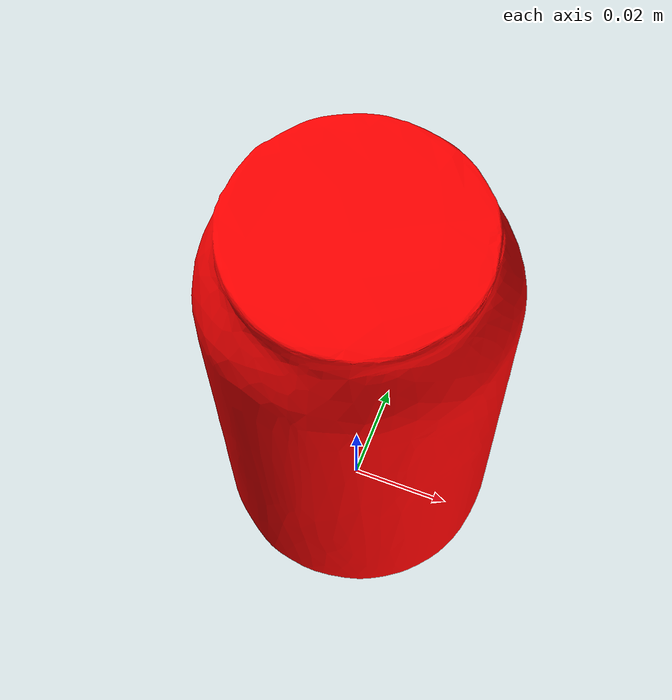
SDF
<?xml version='1.0'?>
<sdf version='1.7'>
  <model name='coke_can_scaled'>
    <link name='link'>
      <inertial>
        <pose>0 0 0.06 0 -0 0</pose>
        <mass>0.39</mass>
        <inertia>
          <ixx>0.00055575</ixx>
          <ixy>0</ixy>
          <ixz>0</ixz>
          <iyy>0.00055575</iyy>
          <iyz>0</iyz>
          <izz>0.0001755</izz>
        </inertia>
      </inertial>
      <self_collide>0</self_collide>
      <enable_wind>0</enable_wind>
      <kinematic>0</kinematic>
      <pose>0 -0 0.033444 0 -0 0</pose>
      <gravity>1</gravity>
      <visual name='visual'>
        <pose>0.003937 0.004724 -0.18 0 -0 0</pose>
        <geometry>
          <mesh>
            <uri>model://coke_can/meshes/coke_can.dae</uri>
            <scale>0.8 0.8 0.8</scale>
          </mesh>
        </geometry>
        <material>
          <shader type='pixel'>
            <normal_map>__default__</normal_map>
          </shader>
          <script>
            <name>ModelPreview_3::link::visual_MATERIAL_</name>
            <uri>__default__</uri>
          </script>
          <ambient>1 0 0 1</ambient>
          <diffuse>1 0 0 1</diffuse>
          <specular>1 0 0 1</specular>
          <emissive>1 0 0 1</emissive>
        </material>
        <transparency>0</transparency>
        <cast_shadows>1</cast_shadows>
      </visual>
      <collision name='collision'>
        <laser_retro>0</laser_retro>
        <max_contacts>10</max_contacts>
        <pose>0.003937 0.004724 -0.18 0 -0 0</pose>
        <geometry>
          <mesh>
            <uri>/home/yi/.gazebo/models/coke_can/meshes/coke_can.dae</uri>
            <scale>0.8 0 0</scale>
          </mesh>
        </geometry>
        <surface>
          <friction>
            <ode>
              <mu>1</mu>
              <mu2>1</mu2>
              <fdir1>0 0 0</fdir1>
              <slip1>0</slip1>
              <slip2>0</slip2>
            </ode>
            <torsional>
              <coefficient>1</coefficient>
              <patch_radius>0</patch_radius>
              <surface_radius>0</surface_radius>
              <use_patch_radius>1</use_patch_radius>
              <ode>
                <slip>0</slip>
              </ode>
            </torsional>
          </friction>
          <bounce>
            <restitution_coefficient>0</restitution_coefficient>
            <threshold>1e+06</threshold>
          </bounce>
          <contact>
            <collide_without_contact>0</collide_without_contact>
            <collide_without_contact_bitmask>1</collide_without_contact_bitmask>
            <collide_bitmask>1</collide_bitmask>
            <ode>
              <soft_cfm>0</soft_cfm>
              <soft_erp>0.2</soft_erp>
              <kp>1e+07</kp>
              <kd>1</kd>
              <max_vel>0.1</max_vel>
              <min_depth>0.001</min_depth>
            </ode>
            <bullet>
              <split_impulse>1</split_impulse>
              <split_impulse_penetration_threshold>-0.01</split_impulse_penetration_threshold>
              <soft_cfm>0</soft_cfm>
              <soft_erp>0.2</soft_erp>
              <kp>1e+07</kp>
              <kd>1</kd>
            </bullet>
          </contact>
        </surface>
      </collision>
    </link>
    <static>0</static>
    <allow_auto_disable>1</allow_auto_disable>
  </model>
</sdf>
